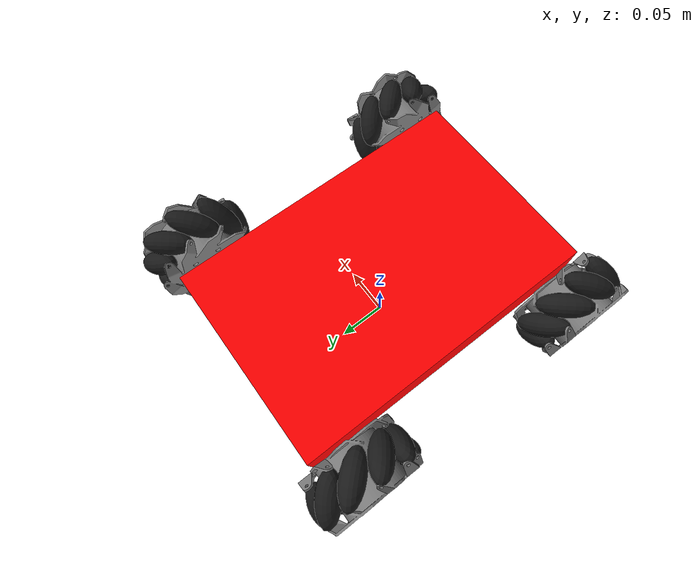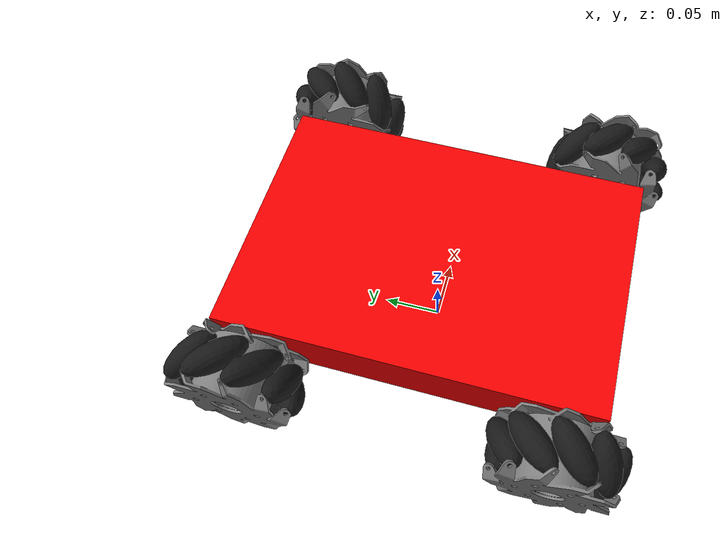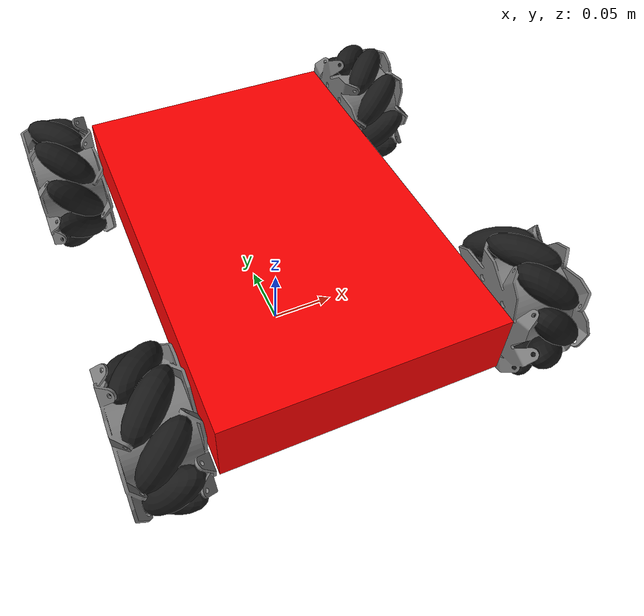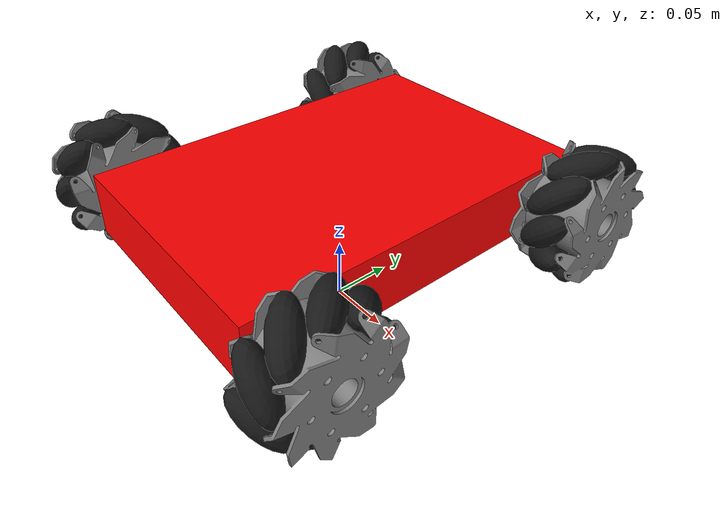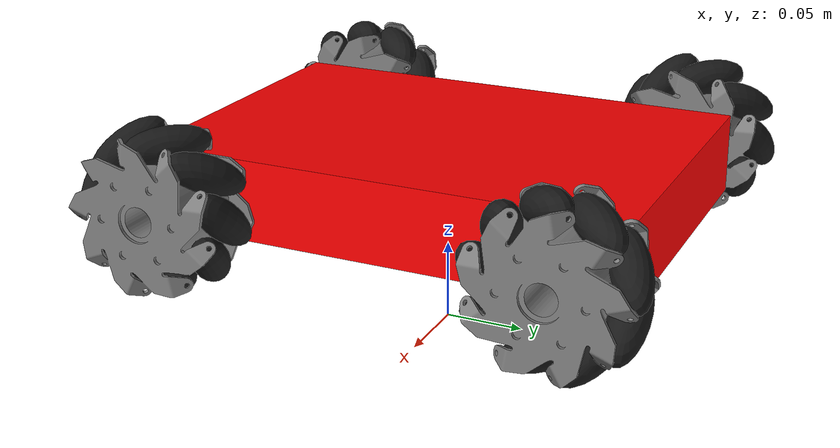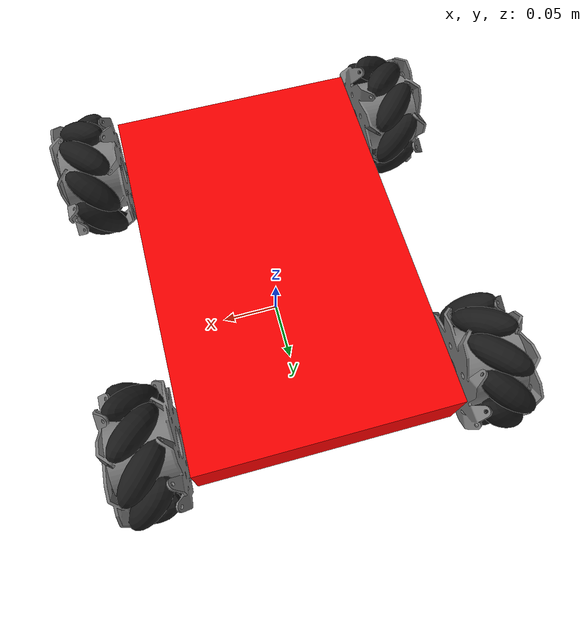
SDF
<sdf version="1.9">
 <world name="playpen">
  <physics name="1ms" type="ignore">
   <max_step_size>0.001</max_step_size>
   <real_time_factor>1.0</real_time_factor>
  </physics>
  <plugin filename="gz-sim-physics-system" name="gz::sim::systems::Physics"/>
  <plugin filename="gz-sim-sensors-system" name="gz::sim::systems::Sensors">
   <render_engine>ogre2</render_engine>
  </plugin>
  <plugin filename="gz-sim-user-commands-system" name="gz::sim::systems::UserCommands"/>
  <plugin filename="gz-sim-scene-broadcaster-system" name="gz::sim::systems::SceneBroadcaster"/>
  <plugin filename="gz-sim-imu-system" name="gz::sim::systems::Imu"/>
  <plugin filename="gz-sim-magnetometer-system" name="gz::sim::systems::Magnetometer"/>
  <plugin filename="gz-sim-navsat-system" name="gz::sim::systems::NavSat"/>
  <scene><ambient>1.0 1.0 1.0</ambient><background>0.8 0.8 0.8</background></scene>
  <light type="directional" name="sun">
   <pose>0 0 10 0 0 0</pose>
   <diffuse>0.8 0.8 0.8 1</diffuse>
   <specular>0.8 0.8 0.8 1</specular>
   <attenuation>
    <range>1000</range>
    <constant>0.9</constant>
    <linear>0.01</linear>
    <quadratic>0.001</quadratic>
   </attenuation>
   <direction>-0.5 0.1 -0.9</direction>
  </light>
  <spherical_coordinates>
   <latitude_deg>-35.3632621</latitude_deg>
   <longitude_deg>149.1652374</longitude_deg>
   <elevation>10.0</elevation>
   <heading_deg>0</heading_deg>
   <surface_model>EARTH_WGS84</surface_model>
  </spherical_coordinates>
  <include><uri>model://omni4rover</uri><pose degrees="true">0 0 0.1 0 0 90</pose></include>
 </world>
</sdf>

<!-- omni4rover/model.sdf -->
<sdf version="1.9">
  <model name="omni4rover">
    <link name="base_link">
      <inertial>
        <mass>1.5</mass>
        <inertia>
          <ixx>0.0053125</ixx>
          <ixy>0</ixy>
          <ixz>0</ixz>
          <iyy>0.0115625</iyy>
          <iyz>0</iyz>
          <izz>0.01625</izz>
        </inertia>
      </inertial>
      <collision name="collision">
        <geometry>
          <box>
            <size>0.3 0.2 0.05</size>
          </box>
        </geometry>
      </collision>
      <visual name="visual">
        <geometry>
          <box>
            <size>0.3 0.2 0.05</size>
          </box>
        </geometry>
        <material>
          <ambient>1 0 0</ambient>
          <diffuse>1 0 0</diffuse>
          <specular>0.1 0.1 0.1</specular>
        </material>
      </visual>

      <!-- senors -->
      <sensor name="imu_sensor" type="imu">
        <pose degrees="true">0 0 0 180 0 0</pose>
        <always_on>1</always_on>
        <update_rate>1000.0</update_rate>
      </sensor>
    </link>

      <!-- wheels -->
      <include>
      <uri>model://mecanum_wheel_left</uri>
      <pose degrees="true">0.12 0.13 0 -90 0 0</pose>
      <name>front_left_wheel</name>
    </include>
    <joint name="front_left_wheel_joint" type="revolute">
      <child>front_left_wheel::wheel_link</child>
      <parent>base_link</parent>
      <axis>
        <xyz>0 0 1</xyz>
        <limit>
          <lower>-1.0e16</lower>
          <upper>1.0e16</upper>
          <effort>1.0e6</effort>
        </limit>
        <dynamics>
          <damping>0.0001</damping>
        </dynamics>
      </axis>
    </joint>

    <include>
      <uri>model://mecanum_wheel_right</uri>
      <pose degrees="true">0.12 -0.13 0 -90 0 0</pose>
      <name>front_right_wheel</name>
    </include>
    <joint name="front_right_wheel_joint" type="revolute">
      <child>front_right_wheel::wheel_link</child>
      <parent>base_link</parent>
      <axis>
        <xyz>0 0 1</xyz>
        <limit>
          <lower>-1.0e16</lower>
          <upper>1.0e16</upper>
          <effort>1.0e6</effort>
        </limit>
        <dynamics>
          <damping>0.0001</damping>
        </dynamics>
      </axis>
    </joint>

    <include>
      <uri>model://mecanum_wheel_right</uri>
      <pose degrees="true">-0.12 0.13 0 -90 0 0</pose>
      <name>back_left_wheel</name>
    </include>
    <joint name="back_left_wheel_joint" type="revolute">
      <child>back_left_wheel::wheel_link</child>
      <parent>base_link</parent>
      <axis>
        <xyz>0 0 1</xyz>
        <limit>
          <lower>-1.0e16</lower>
          <upper>1.0e16</upper>
          <effort>1.0e6</effort>
        </limit>
        <dynamics>
          <damping>0.0001</damping>
        </dynamics>
      </axis>
    </joint>

    <include>
      <uri>model://mecanum_wheel_left</uri>
      <pose degrees="true">-0.12 -0.13 0 -90 0 0</pose>
      <name>back_right_wheel</name>
    </include>
    <joint name="back_right_wheel_joint" type="revolute">
      <child>back_right_wheel::wheel_link</child>
      <parent>base_link</parent>
      <axis>
        <xyz>0 0 1</xyz>
        <limit>
          <lower>-1.0e16</lower>
          <upper>1.0e16</upper>
          <effort>1.0e6</effort>
        </limit>
        <dynamics>
          <damping>0.0001</damping>
        </dynamics>
      </axis>
    </joint>

    <plugin filename="gz-sim-joint-state-publisher-system"
      name="gz::sim::systems::JointStatePublisher">
    </plugin>
    <plugin
      filename="gz-sim-odometry-publisher-system"
      name="gz::sim::systems::OdometryPublisher">
      <odom_frame>odom</odom_frame>
      <robot_base_frame>base_link</robot_base_frame>
      <dimensions>3</dimensions>
      <tf_topic>/model/omni4rover/tf</tf_topic>
    </plugin>

    <plugin name="gz::sim::systems::JointController"
      filename="gz-sim-joint-controller-system">
      <joint_name>front_left_wheel_joint</joint_name>
      <use_force_commands>1</use_force_commands>
      <topic>/model/omni4rover/joint/front_left_wheel_joint/cmd_vel</topic>
      <initial_velocity>0.0</initial_velocity>
      <p_gain>0.3</p_gain>
      <d_gain>1.0e-4</d_gain>
      <cmd_max>1.0e6</cmd_max>
      <cmd_min>-1.0e6</cmd_min>
    </plugin>
    <plugin name="gz::sim::systems::JointController"
      filename="gz-sim-joint-controller-system">
      <joint_name>front_right_wheel_joint</joint_name>
      <use_force_commands>1</use_force_commands>
      <topic>/model/omni4rover/joint/front_right_wheel_joint/cmd_vel</topic>
      <initial_velocity>0.0</initial_velocity>
      <p_gain>0.3</p_gain>
      <d_gain>1.0e-4</d_gain>
      <cmd_max>1.0e6</cmd_max>
      <cmd_min>-1.0e6</cmd_min>
    </plugin>
    <plugin name="gz::sim::systems::JointController"
      filename="gz-sim-joint-controller-system">
      <joint_name>back_left_wheel_joint</joint_name>
      <use_force_commands>1</use_force_commands>
      <topic>/model/omni4rover/joint/back_left_wheel_joint/cmd_vel</topic>
      <initial_velocity>0.0</initial_velocity>
      <p_gain>0.3</p_gain>
      <d_gain>1.0e-4</d_gain>
      <cmd_max>1.0e6</cmd_max>
      <cmd_min>-1.0e6</cmd_min>
    </plugin>
    <plugin name="gz::sim::systems::JointController"
      filename="gz-sim-joint-controller-system">
      <joint_name>back_right_wheel_joint</joint_name>
      <use_force_commands>1</use_force_commands>
      <topic>/model/omni4rover/joint/back_right_wheel_joint/cmd_vel</topic>
      <initial_velocity>0.0</initial_velocity>
      <p_gain>0.3</p_gain>
      <d_gain>1.0e-4</d_gain>
      <cmd_max>1.0e4</cmd_max>
      <cmd_min>-1.0e4</cmd_min>
    </plugin>

  </model>
</sdf>

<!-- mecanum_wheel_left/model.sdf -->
<sdf version="1.9">
  <model name="mecanum_wheel_left">
    <link name="wheel_link">
      <pose>0 0 0 0 0 0</pose>
      <inertial>
        <pose>0 0 0 0 0 0</pose>
        <mass>0.045</mass>
        <inertia>
          <ixx>3.44913E-05</ixx>
          <ixy>0</ixy>
          <ixz>0</ixz>
          <iyy>3.44913E-05</iyy>
          <iyz>0</iyz>
          <izz>5.02327E-05</izz>
        </inertia>
      </inertial>
      <collision name="wheel1_collision">
        <pose>0 0 0.0225 0 0 0</pose>
        <geometry>
          <cylinder>
            <radius>0.04725</radius>
            <length>0.005</length>
          </cylinder>
        </geometry>
      </collision>
      <collision name="wheel2_collision">
        <pose>0 0 -0.0225 0 0 0</pose>
        <geometry>
          <cylinder>
            <radius>0.04725</radius>
            <length>0.005</length>
          </cylinder>
        </geometry>
      </collision>
      <visual name="wheel_visual">
        <geometry>
          <mesh>
            <uri>models://mecanum_wheel_left/meshes/mecanum_wheel_frame_left.stl</uri>
          </mesh>
        </geometry>
        <material>
          <ambient>0.5 0.5 0.5</ambient>
          <diffuse>0.5 0.5 0.5</diffuse>
          <specular>0.1 0.1 0.1</specular>
        </material>
      </visual>

    </link>

    <link name="roller_1_link">
      <pose degrees="true">0.040288288 0 0 -45 2 0</pose>
      <inertial>
        <pose>0 0 0 0 0 0</pose>
        <mass>0.015838863</mass>
        <inertia>
          <ixx>2.36316E-06</ixx>
          <ixy>0</ixy>
          <ixz>0</ixz>
          <iyy>2.36316E-06</iyy>
          <iyz>0</iyz>
          <izz>7.66601E-07</izz>
        </inertia>
      </inertial>
      <collision name="collision">
        <pose degrees="true">0 0 0 90 9 0</pose>
        <geometry>
          <sphere>
            <radius>0.011</radius>
          </sphere>
        </geometry>
        <surface>
          <friction>
            <ode>
              <mu>10.0</mu>
              <mu2>10.0</mu2>
            </ode>
          </friction>
        </surface>
      </collision>
      <visual name="visual">
        <pose degrees="true">0 0 0 90 9 0</pose>
        <geometry>
          <ellipsoid>
            <radii>0.011 0.025 0.011</radii>
          </ellipsoid>
        </geometry>
        <material>
          <ambient>0.1 0.1 0.1</ambient>
          <diffuse>0.1 0.1 0.1</diffuse>
          <specular>0.1 0.1 0.1</specular>
        </material>
      </visual>
    </link>
    <joint name="roller_1_joint" type="revolute">
      <child>roller_1_link</child>
      <parent>wheel_link</parent>
      <axis>
        <xyz>0 0 1</xyz>
        <limit>
          <lower>-1.0e16</lower>
          <upper>1.0e16</upper>
        </limit>
        <dynamics>
          <damping>0.0000</damping>
          <friction>0.0001</friction>
        </dynamics>
      </axis>
    </joint>

    <link name="roller_2_link">
      <pose degrees="true">0.030862619 0.025896812 0 -45 2 40</pose>
      <inertial>
        <pose>0 0 0 0 0 0</pose>
        <mass>0.015838863</mass>
        <inertia>
          <ixx>2.36316E-06</ixx>
          <ixy>0</ixy>
          <ixz>0</ixz>
          <iyy>2.36316E-06</iyy>
          <iyz>0</iyz>
          <izz>7.66601E-07</izz>
        </inertia>
      </inertial>
      <collision name="collision">
        <pose degrees="true">0 0 0 90 9 0</pose>
        <geometry>
          <sphere>
            <radius>0.011</radius>
          </sphere>
        </geometry>
        <surface>
          <friction>
            <ode>
              <mu>10.0</mu>
              <mu2>10.0</mu2>
            </ode>
          </friction>
        </surface>
      </collision>
      <visual name="visual">
        <pose degrees="true">0 0 0 90 9 0</pose>
        <geometry>
          <ellipsoid>
            <radii>0.011 0.025 0.011</radii>
          </ellipsoid>
        </geometry>
        <material>
          <ambient>0.1 0.1 0.1</ambient>
          <diffuse>0.1 0.1 0.1</diffuse>
          <specular>0.1 0.1 0.1</specular>
        </material>
      </visual>
    </link>
    <joint name="roller_2_joint" type="revolute">
      <child>roller_2_link</child>
      <parent>wheel_link</parent>
      <axis>
        <xyz>0 0 1</xyz>
        <limit>
          <lower>-1.0e16</lower>
          <upper>1.0e16</upper>
        </limit>
        <dynamics>
          <damping>0.0000</damping>
          <friction>0.0001</friction>
        </dynamics>
      </axis>
    </joint>

    <link name="roller_3_link">
      <pose degrees="true">0.006995988 0.039676218 0 -45 2 80</pose>
      <inertial>
        <pose>0 0 0 0 0 0</pose>
        <mass>0.015838863</mass>
        <inertia>
          <ixx>2.36316E-06</ixx>
          <ixy>0</ixy>
          <ixz>0</ixz>
          <iyy>2.36316E-06</iyy>
          <iyz>0</iyz>
          <izz>7.66601E-07</izz>
        </inertia>
      </inertial>
      <collision name="collision">
        <pose degrees="true">0 0 0 90 9 0</pose>
        <geometry>
          <sphere>
            <radius>0.011</radius>
          </sphere>
        </geometry>
        <surface>
          <friction>
            <ode>
              <mu>10.0</mu>
              <mu2>10.0</mu2>
            </ode>
          </friction>
        </surface>
      </collision>
      <visual name="visual">
        <pose degrees="true">0 0 0 90 9 0</pose>
        <geometry>
          <ellipsoid>
            <radii>0.011 0.025 0.011</radii>
          </ellipsoid>
        </geometry>
        <material>
          <ambient>0.1 0.1 0.1</ambient>
          <diffuse>0.1 0.1 0.1</diffuse>
          <specular>0.1 0.1 0.1</specular>
        </material>
      </visual>
    </link>
    <joint name="roller_3_joint" type="revolute">
      <child>roller_3_link</child>
      <parent>wheel_link</parent>
      <axis>
        <xyz>0 0 1</xyz>
        <limit>
          <lower>-1.0e16</lower>
          <upper>1.0e16</upper>
        </limit>
        <dynamics>
          <damping>0.0000</damping>
          <friction>0.0001</friction>
        </dynamics>
      </axis>
    </joint>

    <link name="roller_4_link">
      <pose degrees="true">-0.020144144 0.034890681 0 -45 2 120</pose>
      <inertial>
        <pose>0 0 0 0 0 0</pose>
        <mass>0.015838863</mass>
        <inertia>
          <ixx>2.36316E-06</ixx>
          <ixy>0</ixy>
          <ixz>0</ixz>
          <iyy>2.36316E-06</iyy>
          <iyz>0</iyz>
          <izz>7.66601E-07</izz>
        </inertia>
      </inertial>
      <collision name="collision">
        <pose degrees="true">0 0 0 90 9 0</pose>
        <geometry>
          <sphere>
            <radius>0.011</radius>
          </sphere>
        </geometry>
        <surface>
          <friction>
            <ode>
              <mu>10.0</mu>
              <mu2>10.0</mu2>
            </ode>
          </friction>
        </surface>
      </collision>
      <visual name="visual">
        <pose degrees="true">0 0 0 90 9 0</pose>
        <geometry>
          <ellipsoid>
            <radii>0.011 0.025 0.011</radii>
          </ellipsoid>
        </geometry>
        <material>
          <ambient>0.1 0.1 0.1</ambient>
          <diffuse>0.1 0.1 0.1</diffuse>
          <specular>0.1 0.1 0.1</specular>
        </material>
      </visual>
    </link>
    <joint name="roller_4_joint" type="revolute">
      <child>roller_4_link</child>
      <parent>wheel_link</parent>
      <axis>
        <xyz>0 0 1</xyz>
        <limit>
          <lower>-1.0e16</lower>
          <upper>1.0e16</upper>
        </limit>
        <dynamics>
          <damping>0.0000</damping>
          <friction>0.0001</friction>
        </dynamics>
      </axis>
    </joint>

    <link name="roller_5_link">
      <pose degrees="true">-0.037858607 0.013779406 0 -45 2 160</pose>
      <inertial>
        <pose>0 0 0 0 0 0</pose>
        <mass>0.015838863</mass>
        <inertia>
          <ixx>2.36316E-06</ixx>
          <ixy>0</ixy>
          <ixz>0</ixz>
          <iyy>2.36316E-06</iyy>
          <iyz>0</iyz>
          <izz>7.66601E-07</izz>
        </inertia>
      </inertial>
      <collision name="collision">
        <pose degrees="true">0 0 0 90 9 0</pose>
        <geometry>
          <sphere>
            <radius>0.011</radius>
          </sphere>
        </geometry>
        <surface>
          <friction>
            <ode>
              <mu>10.0</mu>
              <mu2>10.0</mu2>
            </ode>
          </friction>
        </surface>
      </collision>
      <visual name="visual">
        <pose degrees="true">0 0 0 90 9 0</pose>
        <geometry>
          <ellipsoid>
            <radii>0.011 0.025 0.011</radii>
          </ellipsoid>
        </geometry>
        <material>
          <ambient>0.1 0.1 0.1</ambient>
          <diffuse>0.1 0.1 0.1</diffuse>
          <specular>0.1 0.1 0.1</specular>
        </material>
      </visual>
    </link>
    <joint name="roller_5_joint" type="revolute">
      <child>roller_5_link</child>
      <parent>wheel_link</parent>
      <axis>
        <xyz>0 0 1</xyz>
        <limit>
          <lower>-1.0e16</lower>
          <upper>1.0e16</upper>
        </limit>
        <dynamics>
          <damping>0.0000</damping>
          <friction>0.0001</friction>
        </dynamics>
      </axis>
    </joint>

    <link name="roller_6_link">
      <pose degrees="true">-0.037858607 -0.013779406 0 -45 2 200</pose>
      <inertial>
        <pose>0 0 0 0 0 0</pose>
        <mass>0.015838863</mass>
        <inertia>
          <ixx>2.36316E-06</ixx>
          <ixy>0</ixy>
          <ixz>0</ixz>
          <iyy>2.36316E-06</iyy>
          <iyz>0</iyz>
          <izz>7.66601E-07</izz>
        </inertia>
      </inertial>
      <collision name="collision">
        <pose degrees="true">0 0 0 90 9 0</pose>
        <geometry>
          <sphere>
            <radius>0.011</radius>
          </sphere>
        </geometry>
        <surface>
          <friction>
            <ode>
              <mu>10.0</mu>
              <mu2>10.0</mu2>
            </ode>
          </friction>
        </surface>
      </collision>
      <visual name="visual">
        <pose degrees="true">0 0 0 90 9 0</pose>
        <geometry>
          <ellipsoid>
            <radii>0.011 0.025 0.011</radii>
          </ellipsoid>
        </geometry>
        <material>
          <ambient>0.1 0.1 0.1</ambient>
          <diffuse>0.1 0.1 0.1</diffuse>
          <specular>0.1 0.1 0.1</specular>
        </material>
      </visual>
    </link>
    <joint name="roller_6_joint" type="revolute">
      <child>roller_6_link</child>
      <parent>wheel_link</parent>
      <axis>
        <xyz>0 0 1</xyz>
        <limit>
          <lower>-1.0e16</lower>
          <upper>1.0e16</upper>
        </limit>
        <dynamics>
          <damping>0.0000</damping>
          <friction>0.0001</friction>
        </dynamics>
      </axis>
    </joint>

    <link name="roller_7_link">
      <pose degrees="true">-0.020144144 -0.034890681 0 -45 2 240</pose>
      <inertial>
        <pose>0 0 0 0 0 0</pose>
        <mass>0.015838863</mass>
        <inertia>
          <ixx>2.36316E-06</ixx>
          <ixy>0</ixy>
          <ixz>0</ixz>
          <iyy>2.36316E-06</iyy>
          <iyz>0</iyz>
          <izz>7.66601E-07</izz>
        </inertia>
      </inertial>
      <collision name="collision">
        <pose degrees="true">0 0 0 90 9 0</pose>
        <geometry>
          <sphere>
            <radius>0.011</radius>
          </sphere>
        </geometry>
        <surface>
          <friction>
            <ode>
              <mu>10.0</mu>
              <mu2>10.0</mu2>
            </ode>
          </friction>
        </surface>
      </collision>
      <visual name="visual">
        <pose degrees="true">0 0 0 90 9 0</pose>
        <geometry>
          <ellipsoid>
            <radii>0.011 0.025 0.011</radii>
          </ellipsoid>
        </geometry>
        <material>
          <ambient>0.1 0.1 0.1</ambient>
          <diffuse>0.1 0.1 0.1</diffuse>
          <specular>0.1 0.1 0.1</specular>
        </material>
      </visual>
    </link>
    <joint name="roller_7_joint" type="revolute">
      <child>roller_7_link</child>
      <parent>wheel_link</parent>
      <axis>
        <xyz>0 0 1</xyz>
        <limit>
          <lower>-1.0e16</lower>
          <upper>1.0e16</upper>
        </limit>
        <dynamics>
          <damping>0.0000</damping>
          <friction>0.0001</friction>
        </dynamics>
      </axis>
    </joint>

    <link name="roller_8_link">
      <pose degrees="true">0.006995988 -0.039676218 0 -45 2 280</pose>
      <inertial>
        <pose>0 0 0 0 0 0</pose>
        <mass>0.015838863</mass>
        <inertia>
          <ixx>2.36316E-06</ixx>
          <ixy>0</ixy>
          <ixz>0</ixz>
          <iyy>2.36316E-06</iyy>
          <iyz>0</iyz>
          <izz>7.66601E-07</izz>
        </inertia>
      </inertial>
      <collision name="collision">
        <pose degrees="true">0 0 0 90 9 0</pose>
        <geometry>
          <sphere>
            <radius>0.011</radius>
          </sphere>
        </geometry>
        <surface>
          <friction>
            <ode>
              <mu>10.0</mu>
              <mu2>10.0</mu2>
            </ode>
          </friction>
        </surface>
      </collision>
      <visual name="visual">
        <pose degrees="true">0 0 0 90 9 0</pose>
        <geometry>
          <ellipsoid>
            <radii>0.011 0.025 0.011</radii>
          </ellipsoid>
        </geometry>
        <material>
          <ambient>0.1 0.1 0.1</ambient>
          <diffuse>0.1 0.1 0.1</diffuse>
          <specular>0.1 0.1 0.1</specular>
        </material>
      </visual>
    </link>
    <joint name="roller_8_joint" type="revolute">
      <child>roller_8_link</child>
      <parent>wheel_link</parent>
      <axis>
        <xyz>0 0 1</xyz>
        <limit>
          <lower>-1.0e16</lower>
          <upper>1.0e16</upper>
        </limit>
        <dynamics>
          <damping>0.0000</damping>
          <friction>0.0001</friction>
        </dynamics>
      </axis>
    </joint>

    <link name="roller_9_link">
      <pose degrees="true">0.030862619 -0.025896812 0 -45 2 320</pose>
      <inertial>
        <pose>0 0 0 0 0 0</pose>
        <mass>0.015838863</mass>
        <inertia>
          <ixx>2.36316E-06</ixx>
          <ixy>0</ixy>
          <ixz>0</ixz>
          <iyy>2.36316E-06</iyy>
          <iyz>0</iyz>
          <izz>7.66601E-07</izz>
        </inertia>
      </inertial>
      <collision name="collision">
        <pose degrees="true">0 0 0 90 9 0</pose>
        <geometry>
          <sphere>
            <radius>0.011</radius>
          </sphere>
        </geometry>
        <surface>
          <friction>
            <ode>
              <mu>10.0</mu>
              <mu2>10.0</mu2>
            </ode>
          </friction>
        </surface>
      </collision>
      <visual name="visual">
        <pose degrees="true">0 0 0 90 9 0</pose>
        <geometry>
          <ellipsoid>
            <radii>0.011 0.025 0.011</radii>
          </ellipsoid>
        </geometry>
        <material>
          <ambient>0.1 0.1 0.1</ambient>
          <diffuse>0.1 0.1 0.1</diffuse>
          <specular>0.1 0.1 0.1</specular>
        </material>
      </visual>
    </link>
    <joint name="roller_9_joint" type="revolute">
      <child>roller_9_link</child>
      <parent>wheel_link</parent>
      <axis>
        <xyz>0 0 1</xyz>
        <limit>
          <lower>-1.0e16</lower>
          <upper>1.0e16</upper>
        </limit>
        <dynamics>
          <damping>0.0000</damping>
          <friction>0.0001</friction>
        </dynamics>
      </axis>
    </joint>

  </model>
</sdf>

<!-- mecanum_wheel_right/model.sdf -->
<sdf version="1.9">
  <model name="mecanum_wheel_right">
    <link name="wheel_link">
      <pose>0 0 0 0 0 0</pose>
      <inertial>
        <pose>0 0 0 0 0 0</pose>
        <mass>0.045</mass>
        <inertia>
          <ixx>3.44913E-05</ixx>
          <ixy>0</ixy>
          <ixz>0</ixz>
          <iyy>3.44913E-05</iyy>
          <iyz>0</iyz>
          <izz>5.02327E-05</izz>
        </inertia>
      </inertial>
      <collision name="wheel1_collision">
        <pose>0 0 0.0225 0 0 0</pose>
        <geometry>
          <cylinder>
            <radius>0.04725</radius>
            <length>0.005</length>
          </cylinder>
        </geometry>
      </collision>
      <collision name="wheel2_collision">
        <pose>0 0 -0.0225 0 0 0</pose>
        <geometry>
          <cylinder>
            <radius>0.04725</radius>
            <length>0.005</length>
          </cylinder>
        </geometry>
      </collision>
      <visual name="wheel_visual">
        <geometry>
          <mesh>
            <uri>models://mecanum_wheel_right/meshes/mecanum_wheel_frame_right.stl</uri>
          </mesh>
        </geometry>
        <material>
          <ambient>0.5 0.5 0.5</ambient>
          <diffuse>0.5 0.5 0.5</diffuse>
          <specular>0.1 0.1 0.1</specular>
        </material>
      </visual>
    </link>

    <link name="roller_1_link">
      <pose degrees="true">-0.040288288 0 0 -45 2 0</pose>
      <inertial>
        <pose>0 0 0 0 0 0</pose>
        <mass>0.015838863</mass>
        <inertia>
          <ixx>2.36316E-06</ixx>
          <ixy>0</ixy>
          <ixz>0</ixz>
          <iyy>2.36316E-06</iyy>
          <iyz>0</iyz>
          <izz>7.66601E-07</izz>
        </inertia>
      </inertial>
      <collision name="collision">
        <pose degrees="true">0 0 0 90 9 0</pose>
        <geometry>
          <sphere>
            <radius>0.011</radius>
          </sphere>
        </geometry>
        <surface>
          <friction>
            <ode>
              <mu>10.0</mu>
              <mu2>10.0</mu2>
            </ode>
          </friction>
        </surface>
      </collision>
      <visual name="visual">
        <pose degrees="true">0 0 0 90 9 0</pose>
        <geometry>
          <ellipsoid>
            <radii>0.011 0.025 0.011</radii>
          </ellipsoid>
        </geometry>
        <material>
          <ambient>0.1 0.1 0.1</ambient>
          <diffuse>0.1 0.1 0.1</diffuse>
          <specular>0.1 0.1 0.1</specular>
        </material>
      </visual>
    </link>
    <joint name="roller_1_joint" type="revolute">
      <child>roller_1_link</child>
      <parent>wheel_link</parent>
      <axis>
        <xyz>0 0 1</xyz>
        <limit>
          <lower>-1.0e16</lower>
          <upper>1.0e16</upper>
        </limit>
        <dynamics>
          <damping>0.0000</damping>
          <friction>0.0001</friction>
        </dynamics>
      </axis>
    </joint>

    <link name="roller_2_link">
      <pose degrees="true">-0.030862619 -0.025896812 0 -45 2 40</pose>
      <inertial>
        <pose>0 0 0 0 0 0</pose>
        <mass>0.015838863</mass>
        <inertia>
          <ixx>2.36316E-06</ixx>
          <ixy>0</ixy>
          <ixz>0</ixz>
          <iyy>2.36316E-06</iyy>
          <iyz>0</iyz>
          <izz>7.66601E-07</izz>
        </inertia>
      </inertial>
      <collision name="collision">
        <pose degrees="true">0 0 0 90 9 0</pose>
        <geometry>
          <sphere>
            <radius>0.011</radius>
          </sphere>
        </geometry>
        <surface>
          <friction>
            <ode>
              <mu>10.0</mu>
              <mu2>10.0</mu2>
            </ode>
          </friction>
        </surface>
      </collision>
      <visual name="visual">
        <pose degrees="true">0 0 0 90 9 0</pose>
        <geometry>
          <ellipsoid>
            <radii>0.011 0.025 0.011</radii>
          </ellipsoid>
        </geometry>
        <material>
          <ambient>0.1 0.1 0.1</ambient>
          <diffuse>0.1 0.1 0.1</diffuse>
          <specular>0.1 0.1 0.1</specular>
        </material>
      </visual>
    </link>
    <joint name="roller_2_joint" type="revolute">
      <child>roller_2_link</child>
      <parent>wheel_link</parent>
      <axis>
        <xyz>0 0 1</xyz>
        <limit>
          <lower>-1.0e16</lower>
          <upper>1.0e16</upper>
        </limit>
        <dynamics>
          <damping>0.0000</damping>
          <friction>0.0001</friction>
        </dynamics>
      </axis>
    </joint>

    <link name="roller_3_link">
      <pose degrees="true">-0.006995988 -0.039676218 0 -45 2 80</pose>
      <inertial>
        <pose>0 0 0 0 0 0</pose>
        <mass>0.015838863</mass>
        <inertia>
          <ixx>2.36316E-06</ixx>
          <ixy>0</ixy>
          <ixz>0</ixz>
          <iyy>2.36316E-06</iyy>
          <iyz>0</iyz>
          <izz>7.66601E-07</izz>
        </inertia>
      </inertial>
      <collision name="collision">
        <pose degrees="true">0 0 0 90 9 0</pose>
        <geometry>
          <sphere>
            <radius>0.011</radius>
          </sphere>
          <surface>
            <friction>
              <ode>
                <mu>10.0</mu>
                <mu2>10.0</mu2>
              </ode>
            </friction>
          </surface>
        </geometry>
      </collision>
      <visual name="visual">
        <pose degrees="true">0 0 0 90 9 0</pose>
        <geometry>
          <ellipsoid>
            <radii>0.011 0.025 0.011</radii>
          </ellipsoid>
        </geometry>
        <material>
          <ambient>0.1 0.1 0.1</ambient>
          <diffuse>0.1 0.1 0.1</diffuse>
          <specular>0.1 0.1 0.1</specular>
        </material>
      </visual>
    </link>
    <joint name="roller_3_joint" type="revolute">
      <child>roller_3_link</child>
      <parent>wheel_link</parent>
      <axis>
        <xyz>0 0 1</xyz>
        <limit>
          <lower>-1.0e16</lower>
          <upper>1.0e16</upper>
        </limit>
        <dynamics>
          <damping>0.0000</damping>
          <friction>0.0001</friction>
        </dynamics>
      </axis>
    </joint>

    <link name="roller_4_link">
      <pose degrees="true">0.020144144 -0.034890681 0 -45 2 120</pose>
      <inertial>
        <pose>0 0 0 0 0 0</pose>
        <mass>0.015838863</mass>
        <inertia>
          <ixx>2.36316E-06</ixx>
          <ixy>0</ixy>
          <ixz>0</ixz>
          <iyy>2.36316E-06</iyy>
          <iyz>0</iyz>
          <izz>7.66601E-07</izz>
        </inertia>
      </inertial>
      <collision name="collision">
        <pose degrees="true">0 0 0 90 9 0</pose>
        <geometry>
          <sphere>
            <radius>0.011</radius>
          </sphere>
        </geometry>
        <surface>
          <friction>
            <ode>
              <mu>10.0</mu>
              <mu2>10.0</mu2>
            </ode>
          </friction>
        </surface>
      </collision>
      <visual name="visual">
        <pose degrees="true">0 0 0 90 9 0</pose>
        <geometry>
          <ellipsoid>
            <radii>0.011 0.025 0.011</radii>
          </ellipsoid>
        </geometry>
        <material>
          <ambient>0.1 0.1 0.1</ambient>
          <diffuse>0.1 0.1 0.1</diffuse>
          <specular>0.1 0.1 0.1</specular>
        </material>
      </visual>
    </link>
    <joint name="roller_4_joint" type="revolute">
      <child>roller_4_link</child>
      <parent>wheel_link</parent>
      <axis>
        <xyz>0 0 1</xyz>
        <limit>
          <lower>-1.0e16</lower>
          <upper>1.0e16</upper>
        </limit>
        <dynamics>
          <damping>0.0000</damping>
          <friction>0.0001</friction>
        </dynamics>
      </axis>
    </joint>

    <link name="roller_5_link">
      <pose degrees="true">0.037858607 -0.013779406 0 -45 2 160</pose>
      <inertial>
        <pose>0 0 0 0 0 0</pose>
        <mass>0.015838863</mass>
        <inertia>
          <ixx>2.36316E-06</ixx>
          <ixy>0</ixy>
          <ixz>0</ixz>
          <iyy>2.36316E-06</iyy>
          <iyz>0</iyz>
          <izz>7.66601E-07</izz>
        </inertia>
      </inertial>
      <collision name="collision">
        <pose degrees="true">0 0 0 90 9 0</pose>
        <geometry>
          <sphere>
            <radius>0.011</radius>
          </sphere>
        </geometry>
        <surface>
          <friction>
            <ode>
              <mu>10.0</mu>
              <mu2>10.0</mu2>
            </ode>
          </friction>
        </surface>
      </collision>
      <visual name="visual">
        <pose degrees="true">0 0 0 90 9 0</pose>
        <geometry>
          <ellipsoid>
            <radii>0.011 0.025 0.011</radii>
          </ellipsoid>
        </geometry>
        <material>
          <ambient>0.1 0.1 0.1</ambient>
          <diffuse>0.1 0.1 0.1</diffuse>
          <specular>0.1 0.1 0.1</specular>
        </material>
      </visual>
    </link>
    <joint name="roller_5_joint" type="revolute">
      <child>roller_5_link</child>
      <parent>wheel_link</parent>
      <axis>
        <xyz>0 0 1</xyz>
        <limit>
          <lower>-1.0e16</lower>
          <upper>1.0e16</upper>
        </limit>
        <dynamics>
          <damping>0.0000</damping>
          <friction>0.0001</friction>
        </dynamics>
      </axis>
    </joint>

    <link name="roller_6_link">
      <pose degrees="true">0.037858607 0.013779406 0 -45 2 200</pose>
      <inertial>
        <pose>0 0 0 0 0 0</pose>
        <mass>0.015838863</mass>
        <inertia>
          <ixx>2.36316E-06</ixx>
          <ixy>0</ixy>
          <ixz>0</ixz>
          <iyy>2.36316E-06</iyy>
          <iyz>0</iyz>
          <izz>7.66601E-07</izz>
        </inertia>
      </inertial>
      <collision name="collision">
        <pose degrees="true">0 0 0 90 9 0</pose>
        <geometry>
          <sphere>
            <radius>0.011</radius>
          </sphere>
        </geometry>
        <surface>
          <friction>
            <ode>
              <mu>10.0</mu>
              <mu2>10.0</mu2>
            </ode>
          </friction>
        </surface>
      </collision>
      <visual name="visual">
        <pose degrees="true">0 0 0 90 9 0</pose>
        <geometry>
          <ellipsoid>
            <radii>0.011 0.025 0.011</radii>
          </ellipsoid>
        </geometry>
        <material>
          <ambient>0.1 0.1 0.1</ambient>
          <diffuse>0.1 0.1 0.1</diffuse>
          <specular>0.1 0.1 0.1</specular>
        </material>
      </visual>
    </link>
    <joint name="roller_6_joint" type="revolute">
      <child>roller_6_link</child>
      <parent>wheel_link</parent>
      <axis>
        <xyz>0 0 1</xyz>
        <limit>
          <lower>-1.0e16</lower>
          <upper>1.0e16</upper>
        </limit>
        <dynamics>
          <damping>0.0000</damping>
          <friction>0.0001</friction>
        </dynamics>
      </axis>
    </joint>

    <link name="roller_7_link">
      <pose degrees="true">0.020144144 0.034890681 0 -45 2 240</pose>
      <inertial>
        <pose>0 0 0 0 0 0</pose>
        <mass>0.015838863</mass>
        <inertia>
          <ixx>2.36316E-06</ixx>
          <ixy>0</ixy>
          <ixz>0</ixz>
          <iyy>2.36316E-06</iyy>
          <iyz>0</iyz>
          <izz>7.66601E-07</izz>
        </inertia>
      </inertial>
      <collision name="collision">
        <pose degrees="true">0 0 0 90 9 0</pose>
        <geometry>
          <sphere>
            <radius>0.011</radius>
          </sphere>
        </geometry>
        <surface>
          <friction>
            <ode>
              <mu>10.0</mu>
              <mu2>10.0</mu2>
            </ode>
          </friction>
        </surface>
      </collision>
      <visual name="visual">
        <pose degrees="true">0 0 0 90 9 0</pose>
        <geometry>
          <ellipsoid>
            <radii>0.011 0.025 0.011</radii>
          </ellipsoid>
        </geometry>
        <material>
          <ambient>0.1 0.1 0.1</ambient>
          <diffuse>0.1 0.1 0.1</diffuse>
          <specular>0.1 0.1 0.1</specular>
        </material>
      </visual>
    </link>
    <joint name="roller_7_joint" type="revolute">
      <child>roller_7_link</child>
      <parent>wheel_link</parent>
      <axis>
        <xyz>0 0 1</xyz>
        <limit>
          <lower>-1.0e16</lower>
          <upper>1.0e16</upper>
        </limit>
        <dynamics>
          <damping>0.0000</damping>
          <friction>0.0001</friction>
        </dynamics>
      </axis>
    </joint>

    <link name="roller_8_link">
      <pose degrees="true">-0.006995988 0.039676218 0 -45 2 280</pose>
      <inertial>
        <pose>0 0 0 0 0 0</pose>
        <mass>0.015838863</mass>
        <inertia>
          <ixx>2.36316E-06</ixx>
          <ixy>0</ixy>
          <ixz>0</ixz>
          <iyy>2.36316E-06</iyy>
          <iyz>0</iyz>
          <izz>7.66601E-07</izz>
        </inertia>
      </inertial>
      <collision name="collision">
        <pose degrees="true">0 0 0 90 9 0</pose>
        <geometry>
          <sphere>
            <radius>0.011</radius>
          </sphere>
        </geometry>
        <surface>
          <friction>
            <ode>
              <mu>10.0</mu>
              <mu2>10.0</mu2>
            </ode>
          </friction>
        </surface>
      </collision>
      <visual name="visual">
        <pose degrees="true">0 0 0 90 9 0</pose>
        <geometry>
          <ellipsoid>
            <radii>0.011 0.025 0.011</radii>
          </ellipsoid>
        </geometry>
        <material>
          <ambient>0.1 0.1 0.1</ambient>
          <diffuse>0.1 0.1 0.1</diffuse>
          <specular>0.1 0.1 0.1</specular>
        </material>
      </visual>
    </link>
    <joint name="roller_8_joint" type="revolute">
      <child>roller_8_link</child>
      <parent>wheel_link</parent>
      <axis>
        <xyz>0 0 1</xyz>
        <limit>
          <lower>-1.0e16</lower>
          <upper>1.0e16</upper>
        </limit>
        <dynamics>
          <damping>0.0000</damping>
          <friction>0.0001</friction>
        </dynamics>
      </axis>
    </joint>

    <link name="roller_9_link">
      <pose degrees="true">-0.030862619 0.025896812 0 -45 2 320</pose>
      <inertial>
        <pose>0 0 0 0 0 0</pose>
        <mass>0.015838863</mass>
        <inertia>
          <ixx>2.36316E-06</ixx>
          <ixy>0</ixy>
          <ixz>0</ixz>
          <iyy>2.36316E-06</iyy>
          <iyz>0</iyz>
          <izz>7.66601E-07</izz>
        </inertia>
      </inertial>
      <collision name="collision">
        <pose degrees="true">0 0 0 90 9 0</pose>
        <geometry>
          <sphere>
            <radius>0.011</radius>
          </sphere>
        </geometry>
        <surface>
          <friction>
            <ode>
              <mu>10.0</mu>
              <mu2>10.0</mu2>
            </ode>
          </friction>
        </surface>
      </collision>
      <visual name="visual">
        <pose degrees="true">0 0 0 90 9 0</pose>
        <geometry>
          <ellipsoid>
            <radii>0.011 0.025 0.011</radii>
          </ellipsoid>
        </geometry>
        <material>
          <ambient>0.1 0.1 0.1</ambient>
          <diffuse>0.1 0.1 0.1</diffuse>
          <specular>0.1 0.1 0.1</specular>
        </material>
      </visual>
    </link>
    <joint name="roller_9_joint" type="revolute">
      <child>roller_9_link</child>
      <parent>wheel_link</parent>
      <axis>
        <xyz>0 0 1</xyz>
        <limit>
          <lower>-1.0e16</lower>
          <upper>1.0e16</upper>
        </limit>
        <dynamics>
          <damping>0.0000</damping>
          <friction>0.0001</friction>
        </dynamics>
      </axis>
    </joint>

  </model>
</sdf>
